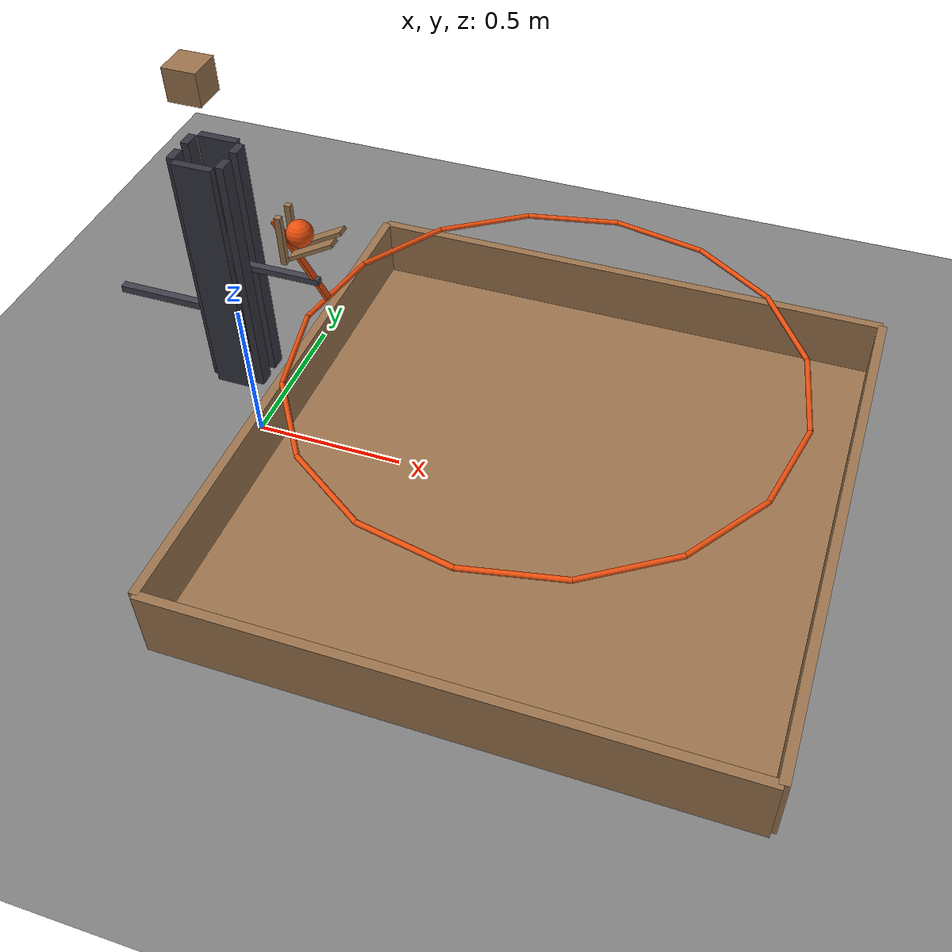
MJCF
<mujoco model="falling_block_spring_plunger_hoop_catch">
  <compiler angle="radian"/>
  <option timestep="0.002"/>
  <worldbody>
    <geom name="floor" type="plane" size="6 6 0.1" friction="0.8 0.005 0.002"/>
    <body name="spring support" pos="-0.4 0 0.5">
      <joint name="support_hinge" type="hinge" pos="0 0 0" axis="0 1 0" limited="true" range="-0.0872665 0.610865" stiffness="30" springref="0" damping="0.1" armature="0.0005"/>
      <geom name="spring support" type="box" pos="0.22 0 0" size="0.22 0.0125 0.012" mass="0.04" friction="0.02 0.005 0.0001" solref="0.01 1" rgba="0.25 0.25 0.3 1"/>
    </body>
    <body name="left guide">
      <geom name="left guide" type="box" pos="0 0.075 0.68" size="0.06 0.012 0.4" friction="0.02 0.005 0.0001" solref="0.01 1" rgba="0.2 0.2 0.25 1"/>
    </body>
    <body name="right guide">
      <geom name="right guide" type="box" pos="0 -0.075 0.68" size="0.06 0.012 0.4" friction="0.02 0.005 0.0001" solref="0.01 1" rgba="0.2 0.2 0.25 1"/>
    </body>
    <body name="near left guide">
      <geom name="near left guide" type="box" pos="-0.075 0.04 0.68" size="0.012 0.024 0.4" friction="0.02 0.005 0.0001" solref="0.01 1" rgba="0.2 0.2 0.25 1"/>
    </body>
    <body name="near right guide">
      <geom name="near right guide" type="box" pos="-0.075 -0.04 0.68" size="0.012 0.024 0.4" friction="0.02 0.005 0.0001" solref="0.01 1" rgba="0.2 0.2 0.25 1"/>
    </body>
    <body name="far left guide">
      <geom name="far left guide" type="box" pos="0.075 0.04 0.68" size="0.012 0.024 0.4" friction="0.02 0.005 0.0001" solref="0.01 1" rgba="0.2 0.2 0.25 1"/>
    </body>
    <body name="far right guide">
      <geom name="far right guide" type="box" pos="0.075 -0.04 0.68" size="0.012 0.024 0.4" friction="0.02 0.005 0.0001" solref="0.01 1" rgba="0.2 0.2 0.25 1"/>
    </body>
    <body name="plunger" pos="0 0 0.632">
      <freejoint/>
      <geom name="plunger" type="box" pos="0 0 0" size="0.06 0.06 0.12" mass="0.08" friction="0.02 0.005 0.0001" solref="0.01 1" rgba="0.25 0.25 0.3 1"/>
      <geom name="striker carrier" type="box" pos="0.13 0 0.068" size="0.17 0.011 0.01" mass="0.015" friction="0.02 0.005 0.0001" solref="0.01 1" rgba="0.25 0.25 0.3 1"/>
      <geom name="striker face" type="box" pos="0.25 0 0.1355" size="0.14109 0.011 0.005" euler="0 1.05165 0" mass="0.005" friction="0.05 0.005 0.0001" solref="0.01 0.2" rgba="0.9 0.3 0.05 1"/>
    </body>
    <body name="block" pos="0 0 1.302">
      <freejoint/>
      <geom name="block" type="box" pos="0 0 0" size="0.05 0.05 0.05" mass="0.4" friction="0.02 0.005 0.0001" solref="0.01 1" rgba="0.6 0.45 0.3 1"/>
    </body>
    <body name="ramp">
      <geom name="ramp_left_rail" type="box" pos="0.31 0.03 0.84" size="0.0806226 0.0175 0.006" euler="0 -0.519146 0" friction="0.15 0.002 0.001" solref="0.01 1" rgba="0.6 0.45 0.3 1"/>
      <geom name="ramp_right_rail" type="box" pos="0.31 -0.03 0.84" size="0.0806226 0.0175 0.006" euler="0 -0.519146 0" friction="0.15 0.002 0.001" solref="0.01 1" rgba="0.6 0.45 0.3 1"/>
      <geom name="ramp_left_stop" type="box" pos="0.215 0.032 0.85" size="0.009 0.009 0.08" friction="0.15 0.002 0.001" solref="0.01 1" rgba="0.6 0.45 0.3 1"/>
      <geom name="ramp_right_stop" type="box" pos="0.215 -0.032 0.85" size="0.009 0.009 0.08" friction="0.15 0.002 0.001" solref="0.01 1" rgba="0.6 0.45 0.3 1"/>
    </body>
    <body name="ball" pos="0.258 0 0.862">
      <freejoint/>
      <geom name="ball" type="sphere" pos="0 0 0" size="0.04" mass="0.025" condim="6" friction="0.3 0.002 0.001" solref="0.01 0.2" rgba="0.9 0.3 0.05 1"/>
    </body>
    <body name="hoop">
      <geom name="hoop_00" type="capsule" size="0.008" fromto="1.758 0 0.55 1.7003 0.290074 0.55" friction="0.3 0.005 0.0001" solref="0.01 1" rgba="0.9 0.3 0.05 1"/>
      <geom name="hoop_01" type="capsule" size="0.008" fromto="1.7003 0.290074 0.55 1.53599 0.535987 0.55" friction="0.3 0.005 0.0001" solref="0.01 1" rgba="0.9 0.3 0.05 1"/>
      <geom name="hoop_02" type="capsule" size="0.008" fromto="1.53599 0.535987 0.55 1.29007 0.700301 0.55" friction="0.3 0.005 0.0001" solref="0.01 1" rgba="0.9 0.3 0.05 1"/>
      <geom name="hoop_03" type="capsule" size="0.008" fromto="1.29007 0.700301 0.55 1 0.758 0.55" friction="0.3 0.005 0.0001" solref="0.01 1" rgba="0.9 0.3 0.05 1"/>
      <geom name="hoop_04" type="capsule" size="0.008" fromto="1 0.758 0.55 0.709926 0.700301 0.55" friction="0.3 0.005 0.0001" solref="0.01 1" rgba="0.9 0.3 0.05 1"/>
      <geom name="hoop_05" type="capsule" size="0.008" fromto="0.709926 0.700301 0.55 0.464013 0.535987 0.55" friction="0.3 0.005 0.0001" solref="0.01 1" rgba="0.9 0.3 0.05 1"/>
      <geom name="hoop_06" type="capsule" size="0.008" fromto="0.464013 0.535987 0.55 0.299699 0.290074 0.55" friction="0.3 0.005 0.0001" solref="0.01 1" rgba="0.9 0.3 0.05 1"/>
      <geom name="hoop_07" type="capsule" size="0.008" fromto="0.299699 0.290074 0.55 0.242 9.28282e-17 0.55" friction="0.3 0.005 0.0001" solref="0.01 1" rgba="0.9 0.3 0.05 1"/>
      <geom name="hoop_08" type="capsule" size="0.008" fromto="0.242 9.28282e-17 0.55 0.299699 -0.290074 0.55" friction="0.3 0.005 0.0001" solref="0.01 1" rgba="0.9 0.3 0.05 1"/>
      <geom name="hoop_09" type="capsule" size="0.008" fromto="0.299699 -0.290074 0.55 0.464013 -0.535987 0.55" friction="0.3 0.005 0.0001" solref="0.01 1" rgba="0.9 0.3 0.05 1"/>
      <geom name="hoop_10" type="capsule" size="0.008" fromto="0.464013 -0.535987 0.55 0.709926 -0.700301 0.55" friction="0.3 0.005 0.0001" solref="0.01 1" rgba="0.9 0.3 0.05 1"/>
      <geom name="hoop_11" type="capsule" size="0.008" fromto="0.709926 -0.700301 0.55 1 -0.758 0.55" friction="0.3 0.005 0.0001" solref="0.01 1" rgba="0.9 0.3 0.05 1"/>
      <geom name="hoop_12" type="capsule" size="0.008" fromto="1 -0.758 0.55 1.29007 -0.700301 0.55" friction="0.3 0.005 0.0001" solref="0.01 1" rgba="0.9 0.3 0.05 1"/>
      <geom name="hoop_13" type="capsule" size="0.008" fromto="1.29007 -0.700301 0.55 1.53599 -0.535987 0.55" friction="0.3 0.005 0.0001" solref="0.01 1" rgba="0.9 0.3 0.05 1"/>
      <geom name="hoop_14" type="capsule" size="0.008" fromto="1.53599 -0.535987 0.55 1.7003 -0.290074 0.55" friction="0.3 0.005 0.0001" solref="0.01 1" rgba="0.9 0.3 0.05 1"/>
      <geom name="hoop_15" type="capsule" size="0.008" fromto="1.7003 -0.290074 0.55 1.758 -1.85656e-16 0.55" friction="0.3 0.005 0.0001" solref="0.01 1" rgba="0.9 0.3 0.05 1"/>
    </body>
    <body name="cup">
      <geom name="cup_base" type="box" pos="1 0 0.02" size="0.9 0.9 0.02" friction="1 0.04 0.02" solref="0.01 1" rgba="0.6 0.45 0.3 1"/>
      <geom name="cup_near_wall" type="box" pos="0.1 0 0.12" size="0.015 0.9 0.12" friction="1 0.04 0.02" solref="0.01 1" rgba="0.6 0.45 0.3 1"/>
      <geom name="cup_far_wall" type="box" pos="1.9 0 0.12" size="0.015 0.9 0.12" friction="1 0.04 0.02" solref="0.01 1" rgba="0.6 0.45 0.3 1"/>
      <geom name="cup_left_wall" type="box" pos="1 0.9 0.12" size="0.9 0.015 0.12" friction="1 0.04 0.02" solref="0.01 1" rgba="0.6 0.45 0.3 1"/>
      <geom name="cup_right_wall" type="box" pos="1 -0.9 0.12" size="0.9 0.015 0.12" friction="1 0.04 0.02" solref="0.01 1" rgba="0.6 0.45 0.3 1"/>
    </body>
  </worldbody>
  <keyframe>
    <key name="start" qpos="0 0 0 0.632 1 0 0 0 0 0 1.302 1 0 0 0 0.258 0 0.862 1 0 0 0" qvel="0 0 0 0 0 0 0 0 0 0 0 0 0 0 0 0 0 0 0"/>
  </keyframe>
</mujoco>
